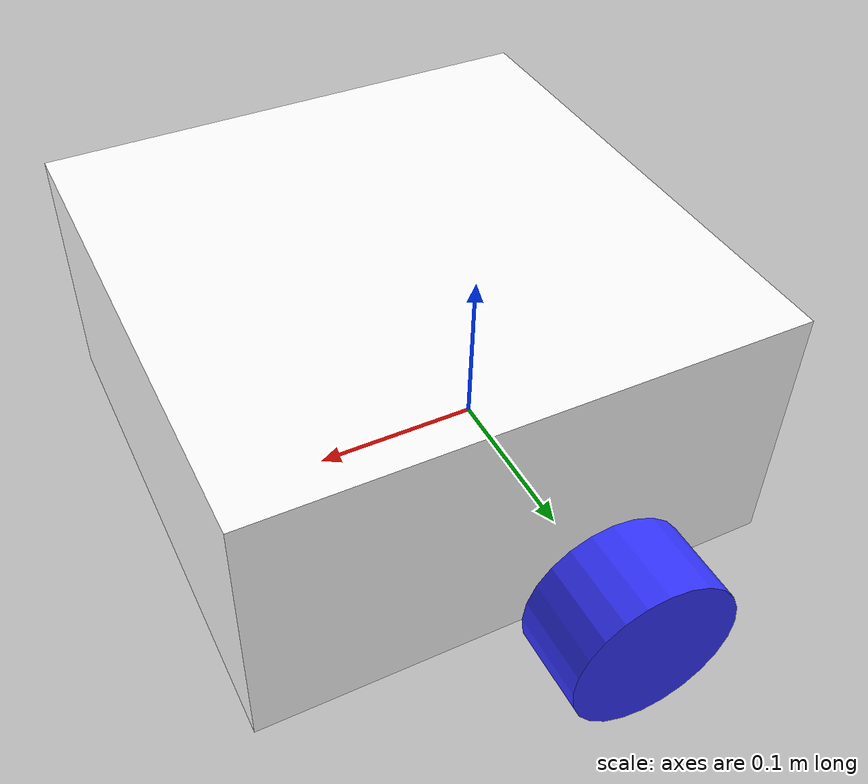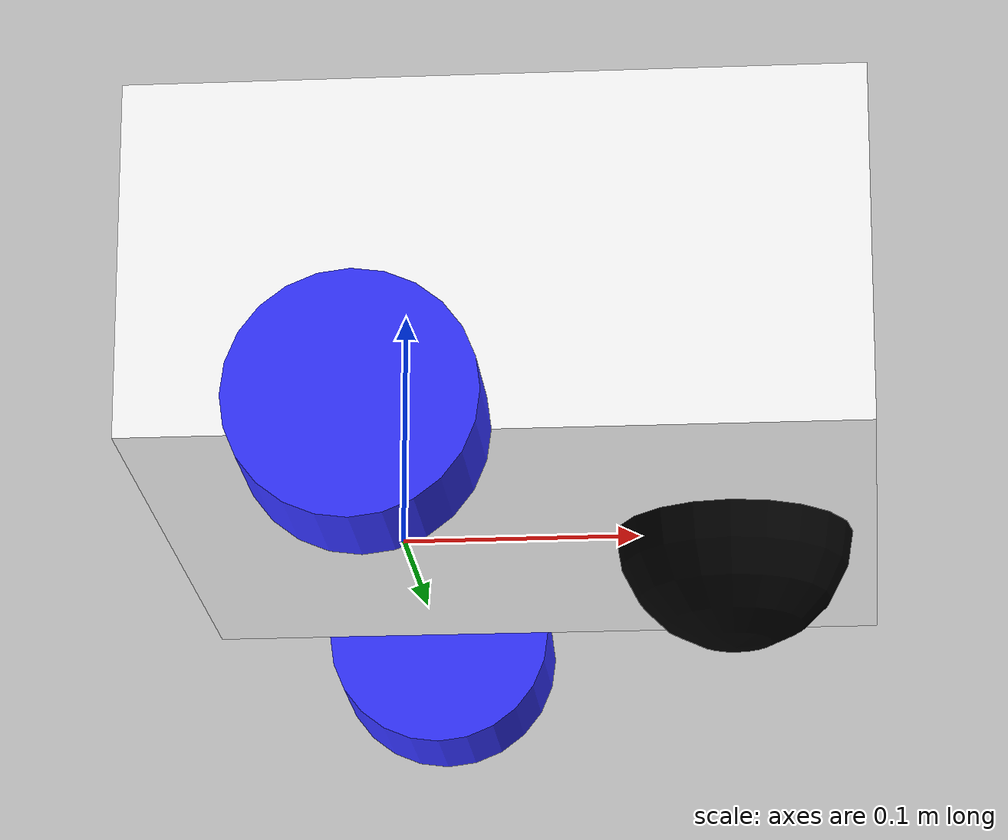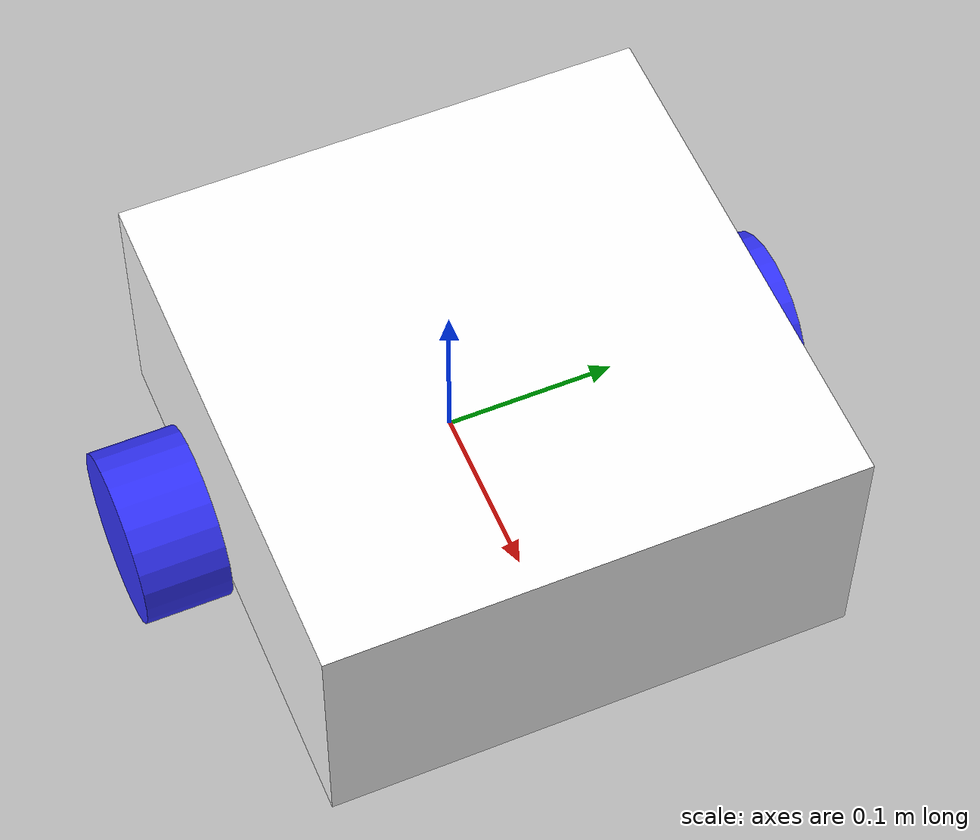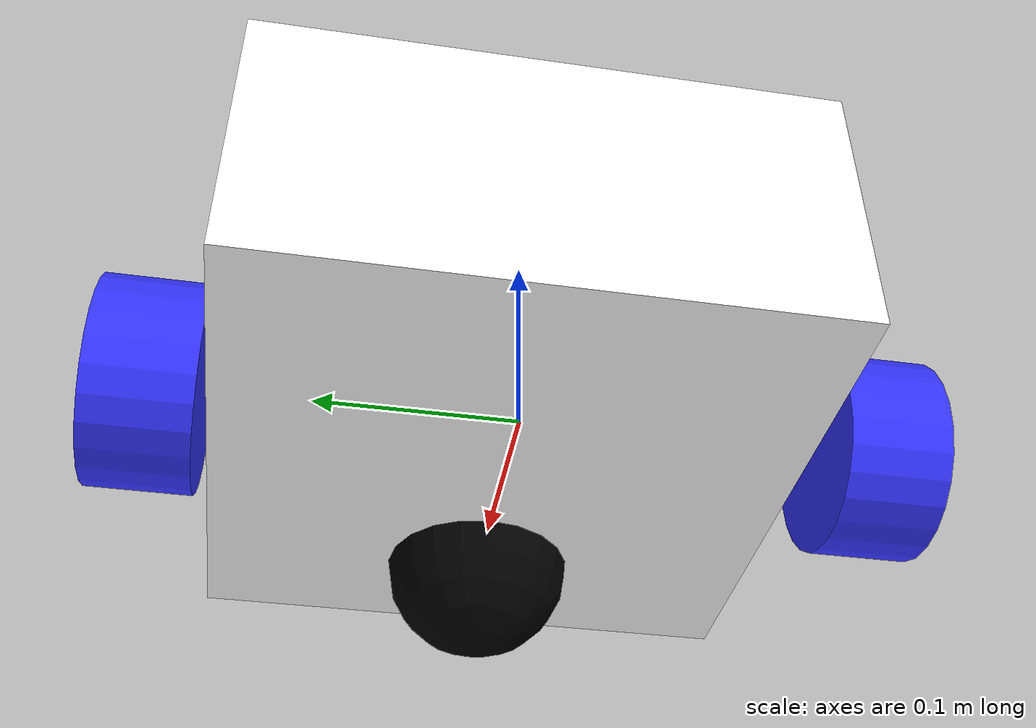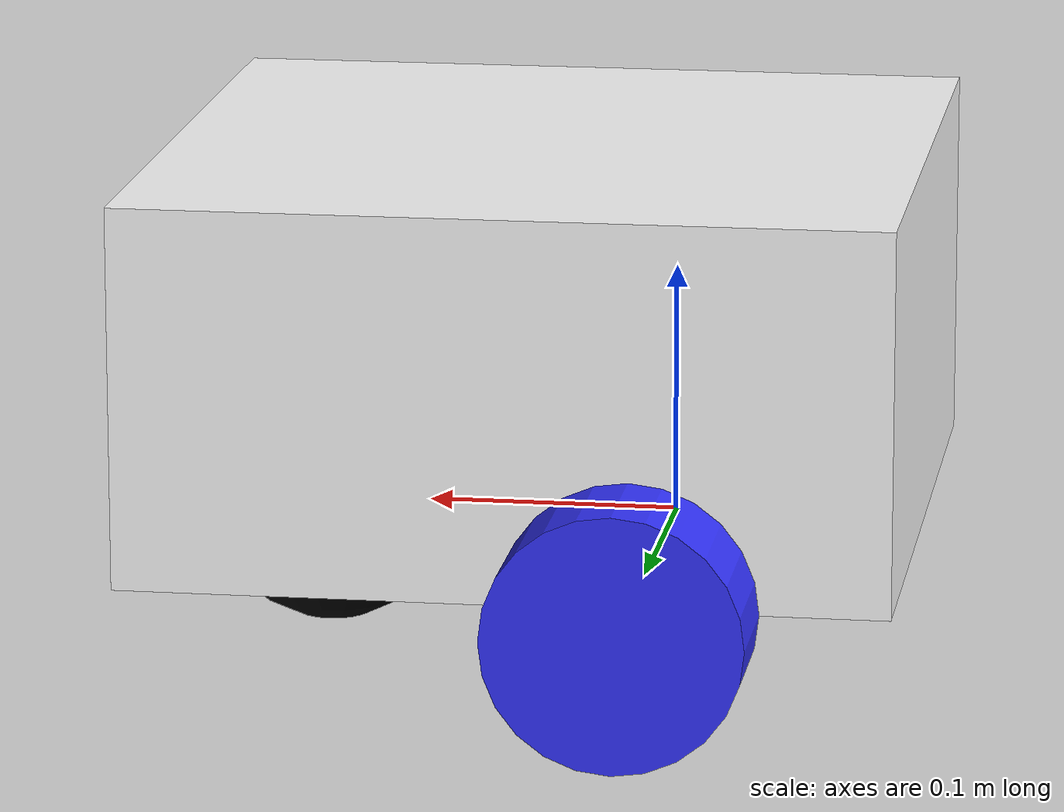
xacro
<?xml version="1.0"?>
<robot xmlns:xacro="http://www.ros.org/wiki/xacro"  name="robot">

    <!-- ROVER PARAMETERS-->
    <xacro:property name="package_name" value="simulation" />

    <!-- wheel parameters -->
    <xacro:property name="wheel_radius" value="0.05" />
    <xacro:property name="wheel_width" value="0.05" />
    <xacro:property name="wheel_mass" value="0.1" />
    <xacro:property name="wheel_mu1" value="10.0" />
    <xacro:property name="wheel_mu2" value="10.0" />

    <!-- caster parameters -->
    <xacro:property name="caster_radius" value="0.05" />
    <xacro:property name="caster_position" value="0.24" />
    <xacro:property name="caster_mass" value="0.1" />
    <xacro:property name="caster_mu1" value="0.0001" />
    <xacro:property name="caster_mu2" value="0.0001" />

    <!-- chassis parameters -->
    <xacro:property name="chassis_height" value="0.15" />
    <xacro:property name="chassis_width" value="0.3" />
    <xacro:property name="chassis_length" value="0.3" />
    <xacro:property name="chassis_position" value="-0.1" />
    <xacro:property name="chassis_mass" value="0.5" />

    <!-- lidar parameters -->
    <xacro:property name="lidar_hfov" value="3.14" />
    <xacro:property name="lidar_vfov" value="0.3" />
    <xacro:property name="lidar_max_range" value="30" />
    <xacro:property name="lidar_update_rate" value="1" />

    <xacro:property name="lidar_viz_cylinder_radius" value="0.01" />
    <xacro:property name="lidar_viz_cylinder_height" value="0.01" />

    <!-- dynamic parameters -->
    <xacro:property name="wheel_max_velocity" value="10" />

    <xacro:include filename="robot_core.xacro" />
    <xacro:include filename="ros2_control.xacro" />
    <xacro:include filename="lidar.xacro" />
    <xacro:include filename="gazebo_plugins.xacro" />

</robot>

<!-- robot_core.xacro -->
<robot xmlns:xacro="http://www.ros.org/wiki/xacro" >

    <xacro:include filename="inertial_macros.xacro"/>

    <material name="white">
        <color rgba="1 1 1 1" />
    </material>

    <material name="orange">
        <color rgba="1 0.3 0.1 1"/>
    </material>

    <material name="blue">
        <color rgba="0.2 0.2 1 1"/>
    </material>

    <material name="black">
        <color rgba="0 0 0 1"/>
    </material>

    <material name="red">
        <color rgba="1 0 0 1"/>
    </material>

    <!-- BASE LINK -->

    <link name="base_link">
        <inertial>
            <mass value="0.0001"/>
            <inertia ixx="0.000001" ixy="0.0" ixz="0.0" iyy="0.000001" iyz="0.0" izz="0.000001"/>
            <origin xyz="0 0 0" rpy="0 0 0"/>
          </inertial>
    </link>

    <!-- CHASSIS LINK -->

    <joint name="chassis_joint" type="fixed">
        <parent link="base_link"/>
        <child link="chassis"/>
        <origin xyz="${chassis_position} 0 0"/>
    </joint>

    <link name="chassis">
        <visual>
            <origin xyz="${chassis_length/2} 0 ${chassis_height/2}"/>
            <geometry>
                <box size="${chassis_length} ${chassis_width} ${chassis_height}"/>
            </geometry>
            <material name="white"/>
        </visual>
        <collision>
            <origin xyz="${chassis_length/2} 0 ${chassis_height/2}"/>
            <geometry>
                <box size="${chassis_length} ${chassis_width} ${chassis_height}"/>
            </geometry>
        </collision>
        <xacro:inertial_box mass="${chassis_mass}" x="${chassis_length}" y="${chassis_width}" z="${chassis_height}">
            <origin xyz="${chassis_length/2} 0 ${chassis_height/2}" rpy="0 0 0"/>
        </xacro:inertial_box>
    </link>
    <gazebo reference="chassis">
        <material>Gazebo/White</material>
    </gazebo>

    <!-- LEFT WHEEL LINK -->

    <joint name="left_wheel_joint" type="continuous">
        <parent link="base_link"/>
        <child link="left_wheel"/>
        <origin xyz="0 ${chassis_width/2 + wheel_width/2} 0" rpy="-${pi/2} 0 0" />
        <axis xyz="0 0 1"/>
    </joint>

    <link name="left_wheel">
        <visual>
            <geometry>
                <cylinder radius="${wheel_radius}" length="${wheel_width}"/>
            </geometry>
            <material name="blue"/>
        </visual>
        <collision>
            <geometry>
                <sphere radius="${wheel_radius}"/>
            </geometry>
        </collision>
        <xacro:inertial_cylinder mass="${wheel_mass}" length="${wheel_width}" radius="${wheel_radius}">
            <origin xyz="0 0 0" rpy="0 0 0"/>
        </xacro:inertial_cylinder>
    </link>
    <gazebo reference="left_wheel">
        <material>Gazebo/Blue</material>
        <mu1 value="${wheel_mu1}"/>
        <mu2 value="${wheel_mu2}"/>
    </gazebo>

    <!-- RIGHT WHEEL LINK -->

    <joint name="right_wheel_joint" type="continuous">
        <parent link="base_link"/>
        <child link="right_wheel"/>
        <origin xyz="0 -${chassis_width/2 + wheel_width/2} 0" rpy="${pi/2} 0 0" />
        <axis xyz="0 0 -1"/>
    </joint>

    <link name="right_wheel">
        <visual>
            <geometry>
                <cylinder radius="${wheel_radius}" length="${wheel_width}"/>
            </geometry>
            <material name="blue"/>
        </visual>
        <collision>
            <geometry>
                <sphere radius="${wheel_radius}"/>
            </geometry>
        </collision>
        <xacro:inertial_cylinder mass="${wheel_mass}" length="${wheel_width}" radius="${wheel_radius}">
            <origin xyz="0 0 0" rpy="0 0 0"/>
        </xacro:inertial_cylinder>
    </link>
    <gazebo reference="right_wheel">
        <material>Gazebo/Blue</material>
        <mu1 value="${wheel_mu1}"/>
        <mu2 value="${wheel_mu2}"/>
    </gazebo>

    <!-- CASTER WHEEL LINK -->

    <joint name="caster_wheel_joint" type="fixed">
        <parent link="chassis"/>
        <child link="caster_wheel"/>
        <origin xyz="${caster_position} 0 0"/>
    </joint>

    <link name="caster_wheel">
        <visual>
            <geometry>
                <sphere radius="${caster_radius}"/>
            </geometry>
            <material name="black"/>
        </visual>
        <collision>
            <geometry>
                <sphere radius="${caster_radius}"/>
            </geometry>
        </collision>
        <xacro:inertial_sphere mass="${caster_mass}" radius="${caster_radius}">
            <origin xyz="0 0 0" rpy="0 0 0"/>
        </xacro:inertial_sphere>
    </link>
    <gazebo reference="caster_wheel">
        <material>Gazebo/Black</material>
        <mu1 value="${caster_mu1}"/>
        <mu2 value="${caster_mu2}"/>
    </gazebo>

</robot>

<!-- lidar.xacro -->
<robot xmlns:xacro="http://www.ros.org/wiki/xacro" >

    <joint name="laser_joint" type="fixed">
        <parent link="chassis"/>
        <child link="laser_frame"/>
        <origin xyz="${chassis_length+lidar_viz_cylinder_radius*2} 0 ${chassis_height}" rpy="0 0 0"/>
    </joint>

    <link name="laser_frame">
    </link>

    <gazebo reference="laser_frame">
        <sensor name='gpu_lidar' type='gpu_lidar'>"
            <pose relative_to='lidar_frame'>0 0 0 0 0 0</pose>
            <topic>lidar</topic>
            <update_rate>${lidar_update_rate}</update_rate>
            <ray>
                <scan>
                    <horizontal>
                        <samples>300</samples>
                        <resolution>1</resolution>
                        <min_angle>${-lidar_hfov/2}</min_angle>
                        <max_angle>${lidar_hfov/2}</max_angle>
                    </horizontal>
                    <vertical>
                        <samples>1</samples>
                        <resolution>0.01</resolution>
                        <min_angle>-0.01</min_angle>
                        <max_angle>0.01</max_angle>
                    </vertical>
                </scan>
                <range>
                    <min>0.08</min>
                    <max>${lidar_max_range}</max>
                    <resolution>0.01</resolution>
                </range>
            </ray>
            <always_on>1</always_on>
            <visualize>true</visualize>
        </sensor>
.
    </gazebo>

</robot>
